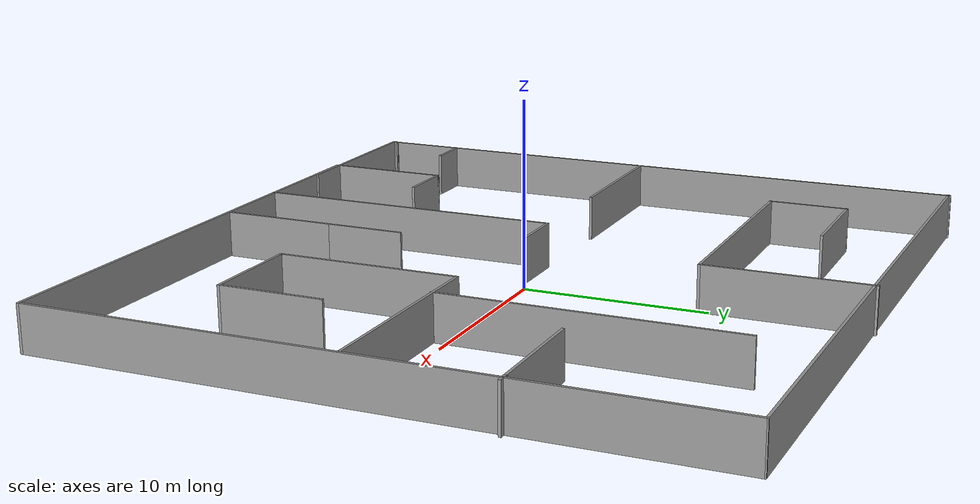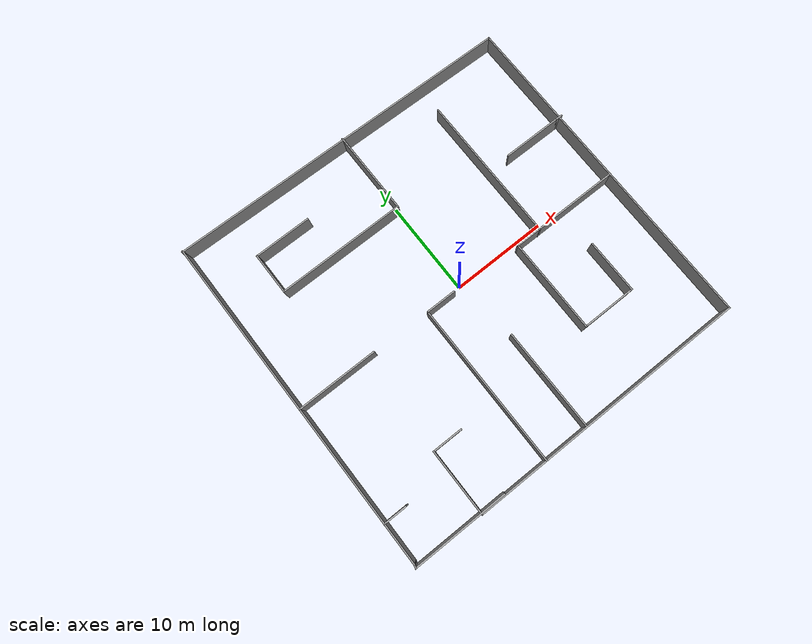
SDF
<?xml version='1.0'?>
<sdf version='1.7'>
  <model name='map1_design'>
    <pose>-0.151208 0.537757 0 0 -0 0</pose>
    <link name='Wall_0'>
      <collision name='Wall_0_Collision'>
        <geometry>
          <box>
            <size>35.75 0.15 2.5</size>
          </box>
        </geometry>
        <pose>0 0 1.25 0 -0 0</pose>
      </collision>
      <visual name='Wall_0_Visual'>
        <pose>0 0 1.25 0 -0 0</pose>
        <geometry>
          <box>
            <size>35.75 0.15 2.5</size>
          </box>
        </geometry>
        <material>
          <script>
            <uri>file://media/materials/scripts/gazebo.material</uri>
            <name>Gazebo/Grey</name>
          </script>
          <ambient>1 1 1 1</ambient>
        </material>
        <meta>
          <layer>0</layer>
        </meta>
      </visual>
      <pose>-18.3813 0.228786 0 0 -0 1.5708</pose>
    </link>
    <link name='Wall_1'>
      <collision name='Wall_1_Collision'>
        <geometry>
          <box>
            <size>36.8263 0.15 2.5</size>
          </box>
        </geometry>
        <pose>0 0 1.25 0 -0 0</pose>
      </collision>
      <visual name='Wall_1_Visual'>
        <pose>0 0 1.25 0 -0 0</pose>
        <geometry>
          <box>
            <size>36.8263 0.15 2.5</size>
          </box>
        </geometry>
        <material>
          <script>
            <uri>file://media/materials/scripts/gazebo.material</uri>
            <name>Gazebo/Grey</name>
          </script>
          <ambient>1 1 1 1</ambient>
        </material>
        <meta>
          <layer>0</layer>
        </meta>
      </visual>
      <pose>-0.116674 17.6396 0 0 -0 -0.017364</pose>
    </link>
    <link name='Wall_12'>
      <collision name='Wall_12_Collision'>
        <geometry>
          <box>
            <size>7.5 0.15 2.5</size>
          </box>
        </geometry>
        <pose>0 0 1.25 0 -0 0</pose>
      </collision>
      <visual name='Wall_12_Visual'>
        <pose>0 0 1.25 0 -0 0</pose>
        <geometry>
          <box>
            <size>7.5 0.15 2.5</size>
          </box>
        </geometry>
        <material>
          <script>
            <uri>file://media/materials/scripts/gazebo.material</uri>
            <name>Gazebo/Grey</name>
          </script>
          <ambient>1 1 1 1</ambient>
        </material>
        <meta>
          <layer>0</layer>
        </meta>
      </visual>
      <pose>-7.5563 -18.0288 0 0 -0 3.14159</pose>
    </link>
    <link name='Wall_13'>
      <collision name='Wall_13_Collision'>
        <geometry>
          <box>
            <size>7 0.15 2.5</size>
          </box>
        </geometry>
        <pose>0 0 1.25 0 -0 0</pose>
      </collision>
      <visual name='Wall_13_Visual'>
        <pose>0 0 1.25 0 -0 0</pose>
        <geometry>
          <box>
            <size>7 0.15 2.5</size>
          </box>
        </geometry>
        <material>
          <script>
            <uri>file://media/materials/scripts/gazebo.material</uri>
            <name>Gazebo/Grey</name>
          </script>
          <ambient>1 1 1 1</ambient>
        </material>
        <meta>
          <layer>0</layer>
        </meta>
      </visual>
      <pose>-11.2313 -14.6038 0 0 -0 1.5708</pose>
    </link>
    <link name='Wall_14'>
      <collision name='Wall_14_Collision'>
        <geometry>
          <box>
            <size>3.25 0.15 2.5</size>
          </box>
        </geometry>
        <pose>0 0 1.25 0 -0 0</pose>
      </collision>
      <visual name='Wall_14_Visual'>
        <pose>0 0 1.25 0 -0 0</pose>
        <geometry>
          <box>
            <size>3.25 0.15 2.5</size>
          </box>
        </geometry>
        <material>
          <script>
            <uri>file://media/materials/scripts/gazebo.material</uri>
            <name>Gazebo/Grey</name>
          </script>
          <ambient>1 1 1 1</ambient>
        </material>
        <meta>
          <layer>0</layer>
        </meta>
      </visual>
      <pose>-9.6813 -11.1788 0 0 -0 0</pose>
    </link>
    <link name='Wall_16'>
      <collision name='Wall_16_Collision'>
        <geometry>
          <box>
            <size>2.5 0.15 2.5</size>
          </box>
        </geometry>
        <pose>0 0 1.25 0 -0 0</pose>
      </collision>
      <visual name='Wall_16_Visual'>
        <pose>0 0 1.25 0 -0 0</pose>
        <geometry>
          <box>
            <size>2.5 0.15 2.5</size>
          </box>
        </geometry>
        <material>
          <script>
            <uri>file://media/materials/scripts/gazebo.material</uri>
            <name>Gazebo/Grey</name>
          </script>
          <ambient>1 1 1 1</ambient>
        </material>
        <meta>
          <layer>0</layer>
        </meta>
      </visual>
      <pose>-17.2181 -13.3403 0 0 -0 0</pose>
    </link>
    <link name='Wall_19'>
      <collision name='Wall_19_Collision'>
        <geometry>
          <box>
            <size>0.5 0.15 2.5</size>
          </box>
        </geometry>
        <pose>0 0 1.25 0 -0 0</pose>
      </collision>
      <visual name='Wall_19_Visual'>
        <pose>0 0 1.25 0 -0 0</pose>
        <geometry>
          <box>
            <size>0.5 0.15 2.5</size>
          </box>
        </geometry>
        <material>
          <script>
            <uri>file://media/materials/scripts/gazebo.material</uri>
            <name>Gazebo/Grey</name>
          </script>
          <ambient>1 1 1 1</ambient>
        </material>
        <meta>
          <layer>0</layer>
        </meta>
      </visual>
      <pose>-18.4266 -17.7403 0 0 -0 -1.8326</pose>
    </link>
    <link name='Wall_2'>
      <collision name='Wall_2_Collision'>
        <geometry>
          <box>
            <size>35.5 0.15 2.5</size>
          </box>
        </geometry>
        <pose>0 0 1.25 0 -0 0</pose>
      </collision>
      <visual name='Wall_2_Visual'>
        <pose>0 0 1.25 0 -0 0</pose>
        <geometry>
          <box>
            <size>35.5 0.15 2.5</size>
          </box>
        </geometry>
        <material>
          <script>
            <uri>file://media/materials/scripts/gazebo.material</uri>
            <name>Gazebo/Grey</name>
          </script>
          <ambient>1 1 1 1</ambient>
        </material>
        <meta>
          <layer>0</layer>
        </meta>
      </visual>
      <pose>18.2187 -0.353785 0 0 -0 -1.5708</pose>
    </link>
    <link name='Wall_20'>
      <collision name='Wall_20_Collision'>
        <geometry>
          <box>
            <size>10 0.15 2.5</size>
          </box>
        </geometry>
        <pose>0 0 1.25 0 -0 0</pose>
      </collision>
      <visual name='Wall_20_Visual'>
        <pose>0 0 1.25 0 -0 0</pose>
        <geometry>
          <box>
            <size>10 0.15 2.5</size>
          </box>
        </geometry>
        <material>
          <script>
            <uri>file://media/materials/scripts/gazebo.material</uri>
            <name>Gazebo/Grey</name>
          </script>
          <ambient>1 1 1 1</ambient>
        </material>
        <meta>
          <layer>0</layer>
        </meta>
      </visual>
      <pose>-13.5469 -17.9093 0 0 -0 0</pose>
    </link>
    <link name='Wall_22'>
      <collision name='Wall_22_Collision'>
        <geometry>
          <box>
            <size>9 0.15 2.5</size>
          </box>
        </geometry>
        <pose>0 0 1.25 0 -0 0</pose>
      </collision>
      <visual name='Wall_22_Visual'>
        <pose>0 0 1.25 0 -0 0</pose>
        <geometry>
          <box>
            <size>9 0.15 2.5</size>
          </box>
        </geometry>
        <material>
          <script>
            <uri>file://media/materials/scripts/gazebo.material</uri>
            <name>Gazebo/Grey</name>
          </script>
          <ambient>1 1 1 1</ambient>
        </material>
        <meta>
          <layer>0</layer>
        </meta>
      </visual>
      <pose>0.185289 13.3386 0 0 -0 -1.5708</pose>
    </link>
    <link name='Wall_23'>
      <collision name='Wall_23_Collision'>
        <geometry>
          <box>
            <size>13.5 0.15 2.5</size>
          </box>
        </geometry>
        <pose>0 0 1.25 0 -0 0</pose>
      </collision>
      <visual name='Wall_23_Visual'>
        <pose>0 0 1.25 0 -0 0</pose>
        <geometry>
          <box>
            <size>13.5 0.15 2.5</size>
          </box>
        </geometry>
        <material>
          <script>
            <uri>file://media/materials/scripts/gazebo.material</uri>
            <name>Gazebo/Grey</name>
          </script>
          <ambient>1 1 1 1</ambient>
        </material>
        <meta>
          <layer>0</layer>
        </meta>
      </visual>
      <pose>-6.48971 8.91357 0 0 -0 3.14159</pose>
    </link>
    <link name='Wall_24'>
      <collision name='Wall_24_Collision'>
        <geometry>
          <box>
            <size>4.5 0.15 2.5</size>
          </box>
        </geometry>
        <pose>0 0 1.25 0 -0 0</pose>
      </collision>
      <visual name='Wall_24_Visual'>
        <pose>0 0 1.25 0 -0 0</pose>
        <geometry>
          <box>
            <size>4.5 0.15 2.5</size>
          </box>
        </geometry>
        <material>
          <script>
            <uri>file://media/materials/scripts/gazebo.material</uri>
            <name>Gazebo/Grey</name>
          </script>
          <ambient>1 1 1 1</ambient>
        </material>
        <meta>
          <layer>0</layer>
        </meta>
      </visual>
      <pose>-13.1647 11.0886 0 0 -0 1.5708</pose>
    </link>
    <link name='Wall_25'>
      <collision name='Wall_25_Collision'>
        <geometry>
          <box>
            <size>6 0.15 2.5</size>
          </box>
        </geometry>
        <pose>0 0 1.25 0 -0 0</pose>
      </collision>
      <visual name='Wall_25_Visual'>
        <pose>0 0 1.25 0 -0 0</pose>
        <geometry>
          <box>
            <size>6 0.15 2.5</size>
          </box>
        </geometry>
        <material>
          <script>
            <uri>file://media/materials/scripts/gazebo.material</uri>
            <name>Gazebo/Grey</name>
          </script>
          <ambient>1 1 1 1</ambient>
        </material>
        <meta>
          <layer>0</layer>
        </meta>
      </visual>
      <pose>-10.2397 13.2636 0 0 -0 0</pose>
    </link>
    <link name='Wall_27'>
      <collision name='Wall_27_Collision'>
        <geometry>
          <box>
            <size>11.5 0.15 2.5</size>
          </box>
        </geometry>
        <pose>0 0 1.25 0 -0 0</pose>
      </collision>
      <visual name='Wall_27_Visual'>
        <pose>0 0 1.25 0 -0 0</pose>
        <geometry>
          <box>
            <size>11.5 0.15 2.5</size>
          </box>
        </geometry>
        <material>
          <script>
            <uri>file://media/materials/scripts/gazebo.material</uri>
            <name>Gazebo/Grey</name>
          </script>
          <ambient>1 1 1 1</ambient>
        </material>
        <meta>
          <layer>0</layer>
        </meta>
      </visual>
      <pose>12.3833 -1.2324 0 0 -0 3.14159</pose>
    </link>
    <link name='Wall_28'>
      <collision name='Wall_28_Collision'>
        <geometry>
          <box>
            <size>10 0.15 2.5</size>
          </box>
        </geometry>
        <pose>0 0 1.25 0 -0 0</pose>
      </collision>
      <visual name='Wall_28_Visual'>
        <pose>0 0 1.25 0 -0 0</pose>
        <geometry>
          <box>
            <size>10 0.15 2.5</size>
          </box>
        </geometry>
        <material>
          <script>
            <uri>file://media/materials/scripts/gazebo.material</uri>
            <name>Gazebo/Grey</name>
          </script>
          <ambient>1 1 1 1</ambient>
        </material>
        <meta>
          <layer>0</layer>
        </meta>
      </visual>
      <pose>6.70834 -6.1574 0 0 -0 -1.5708</pose>
    </link>
    <link name='Wall_29'>
      <collision name='Wall_29_Collision'>
        <geometry>
          <box>
            <size>5.75 0.15 2.5</size>
          </box>
        </geometry>
        <pose>0 0 1.25 0 -0 0</pose>
      </collision>
      <visual name='Wall_29_Visual'>
        <pose>0 0 1.25 0 -0 0</pose>
        <geometry>
          <box>
            <size>5.75 0.15 2.5</size>
          </box>
        </geometry>
        <material>
          <script>
            <uri>file://media/materials/scripts/gazebo.material</uri>
            <name>Gazebo/Grey</name>
          </script>
          <ambient>1 1 1 1</ambient>
        </material>
        <meta>
          <layer>0</layer>
        </meta>
      </visual>
      <pose>9.50835 -11.0824 0 0 -0 0</pose>
    </link>
    <link name='Wall_3'>
      <collision name='Wall_3_Collision'>
        <geometry>
          <box>
            <size>22.25 0.15 2.5</size>
          </box>
        </geometry>
        <pose>0 0 1.25 0 -0 0</pose>
      </collision>
      <visual name='Wall_3_Visual'>
        <pose>0 0 1.25 0 -0 0</pose>
        <geometry>
          <box>
            <size>22.25 0.15 2.5</size>
          </box>
        </geometry>
        <material>
          <script>
            <uri>file://media/materials/scripts/gazebo.material</uri>
            <name>Gazebo/Grey</name>
          </script>
          <ambient>1 1 1 1</ambient>
        </material>
        <meta>
          <layer>0</layer>
        </meta>
      </visual>
      <pose>7.16871 -18.0288 0 0 -0 3.14159</pose>
    </link>
    <link name='Wall_30'>
      <collision name='Wall_30_Collision'>
        <geometry>
          <box>
            <size>5.75 0.15 2.5</size>
          </box>
        </geometry>
        <pose>0 0 1.25 0 -0 0</pose>
      </collision>
      <visual name='Wall_30_Visual'>
        <pose>0 0 1.25 0 -0 0</pose>
        <geometry>
          <box>
            <size>5.75 0.15 2.5</size>
          </box>
        </geometry>
        <material>
          <script>
            <uri>file://media/materials/scripts/gazebo.material</uri>
            <name>Gazebo/Grey</name>
          </script>
          <ambient>1 1 1 1</ambient>
        </material>
        <meta>
          <layer>0</layer>
        </meta>
      </visual>
      <pose>12.3083 -8.2824 0 0 -0 1.5708</pose>
    </link>
    <link name='Wall_32'>
      <collision name='Wall_32_Collision'>
        <geometry>
          <box>
            <size>4.5 0.15 2.5</size>
          </box>
        </geometry>
        <pose>0 0 1.25 0 -0 0</pose>
      </collision>
      <visual name='Wall_32_Visual'>
        <pose>0 0 1.25 0 -0 0</pose>
        <geometry>
          <box>
            <size>4.5 0.15 2.5</size>
          </box>
        </geometry>
        <material>
          <script>
            <uri>file://media/materials/scripts/gazebo.material</uri>
            <name>Gazebo/Grey</name>
          </script>
          <ambient>1 1 1 1</ambient>
        </material>
        <meta>
          <layer>0</layer>
        </meta>
      </visual>
      <pose>0.840322 -9.58343 0 0 -0 -1.5708</pose>
    </link>
    <link name='Wall_33'>
      <collision name='Wall_33_Collision'>
        <geometry>
          <box>
            <size>6.25 0.15 2.5</size>
          </box>
        </geometry>
        <pose>0 0 1.25 0 -0 0</pose>
      </collision>
      <visual name='Wall_33_Visual'>
        <pose>0 0 1.25 0 -0 0</pose>
        <geometry>
          <box>
            <size>6.25 0.15 2.5</size>
          </box>
        </geometry>
        <material>
          <script>
            <uri>file://media/materials/scripts/gazebo.material</uri>
            <name>Gazebo/Grey</name>
          </script>
          <ambient>1 1 1 1</ambient>
        </material>
        <meta>
          <layer>0</layer>
        </meta>
      </visual>
      <pose>0.840322 -14.8084 0 0 -0 -1.5708</pose>
    </link>
    <link name='Wall_35'>
      <collision name='Wall_35_Collision'>
        <geometry>
          <box>
            <size>15.75 0.15 2.5</size>
          </box>
        </geometry>
        <pose>0 0 1.25 0 -0 0</pose>
      </collision>
      <visual name='Wall_35_Visual'>
        <pose>0 0 1.25 0 -0 0</pose>
        <geometry>
          <box>
            <size>15.75 0.15 2.5</size>
          </box>
        </geometry>
        <material>
          <script>
            <uri>file://media/materials/scripts/gazebo.material</uri>
            <name>Gazebo/Grey</name>
          </script>
          <ambient>1 1 1 1</ambient>
        </material>
        <meta>
          <layer>0</layer>
        </meta>
      </visual>
      <pose>9.35576 6.53548 0 0 -0 1.5708</pose>
    </link>
    <link name='Wall_37'>
      <collision name='Wall_37_Collision'>
        <geometry>
          <box>
            <size>6.25 0.15 2.5</size>
          </box>
        </geometry>
        <pose>0 0 1.25 0 -0 0</pose>
      </collision>
      <visual name='Wall_37_Visual'>
        <pose>0 0 1.25 0 -0 0</pose>
        <geometry>
          <box>
            <size>6.25 0.15 2.5</size>
          </box>
        </geometry>
        <material>
          <script>
            <uri>file://media/materials/scripts/gazebo.material</uri>
            <name>Gazebo/Grey</name>
          </script>
          <ambient>1 1 1 1</ambient>
        </material>
        <meta>
          <layer>0</layer>
        </meta>
      </visual>
      <pose>14.8387 6.34727 0 0 -0 0</pose>
    </link>
    <link name='Wall_38'>
      <collision name='Wall_38_Collision'>
        <geometry>
          <box>
            <size>0.75 0.15 2.5</size>
          </box>
        </geometry>
        <pose>0 0 1.25 0 -0 0</pose>
      </collision>
      <visual name='Wall_38_Visual'>
        <pose>0 0 1.25 0 -0 0</pose>
        <geometry>
          <box>
            <size>0.75 0.15 2.5</size>
          </box>
        </geometry>
        <material>
          <script>
            <uri>file://media/materials/scripts/gazebo.material</uri>
            <name>Gazebo/Grey</name>
          </script>
          <ambient>1 1 1 1</ambient>
        </material>
        <meta>
          <layer>0</layer>
        </meta>
      </visual>
      <pose>18.1887 6.34727 0 0 -0 0</pose>
    </link>
    <link name='Wall_4'>
      <collision name='Wall_4_Collision'>
        <geometry>
          <box>
            <size>17.25 0.15 2.5</size>
          </box>
        </geometry>
        <pose>0 0 1.25 0 -0 0</pose>
      </collision>
      <visual name='Wall_4_Visual'>
        <pose>0 0 1.25 0 -0 0</pose>
        <geometry>
          <box>
            <size>17.25 0.15 2.5</size>
          </box>
        </geometry>
        <material>
          <script>
            <uri>file://media/materials/scripts/gazebo.material</uri>
            <name>Gazebo/Grey</name>
          </script>
          <ambient>1 1 1 1</ambient>
        </material>
        <meta>
          <layer>0</layer>
        </meta>
      </visual>
      <pose>-3.8813 -9.47879 0 0 -0 1.5708</pose>
    </link>
    <link name='Wall_5'>
      <collision name='Wall_5_Collision'>
        <geometry>
          <box>
            <size>3.25 0.15 2.5</size>
          </box>
        </geometry>
        <pose>0 0 1.25 0 -0 0</pose>
      </collision>
      <visual name='Wall_5_Visual'>
        <pose>0 0 1.25 0 -0 0</pose>
        <geometry>
          <box>
            <size>3.25 0.15 2.5</size>
          </box>
        </geometry>
        <material>
          <script>
            <uri>file://media/materials/scripts/gazebo.material</uri>
            <name>Gazebo/Grey</name>
          </script>
          <ambient>1 1 1 1</ambient>
        </material>
        <meta>
          <layer>0</layer>
        </meta>
      </visual>
      <pose>-2.33129 -0.928785 0 0 -0 0</pose>
    </link>
    <link name='Wall_7'>
      <collision name='Wall_7_Collision'>
        <geometry>
          <box>
            <size>8.5 0.15 2.5</size>
          </box>
        </geometry>
        <pose>0 0 1.25 0 -0 0</pose>
      </collision>
      <visual name='Wall_7_Visual'>
        <pose>0 0 1.25 0 -0 0</pose>
        <geometry>
          <box>
            <size>8.5 0.15 2.5</size>
          </box>
        </geometry>
        <material>
          <script>
            <uri>file://media/materials/scripts/gazebo.material</uri>
            <name>Gazebo/Grey</name>
          </script>
          <ambient>1 1 1 1</ambient>
        </material>
        <meta>
          <layer>0</layer>
        </meta>
      </visual>
      <pose>-14.2063 -0.780034 0 0 -0 0</pose>
    </link>
    <static>1</static>
  </model>
</sdf>
